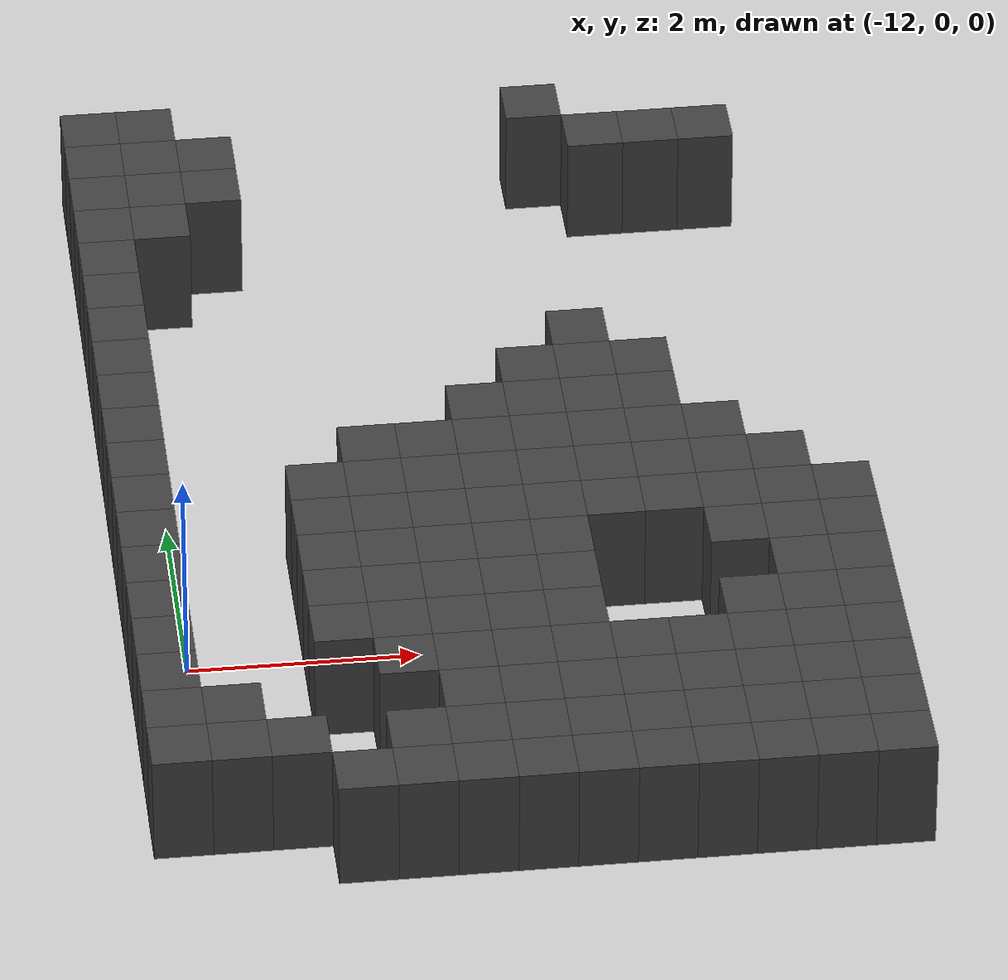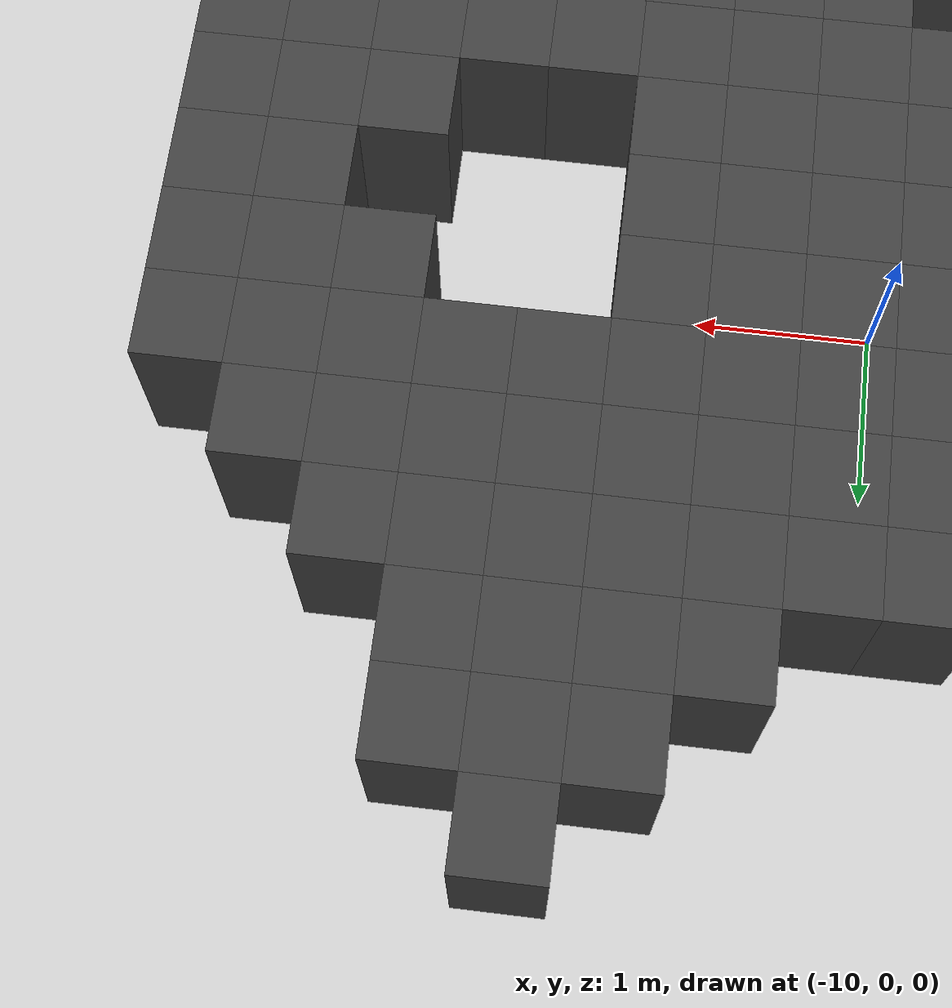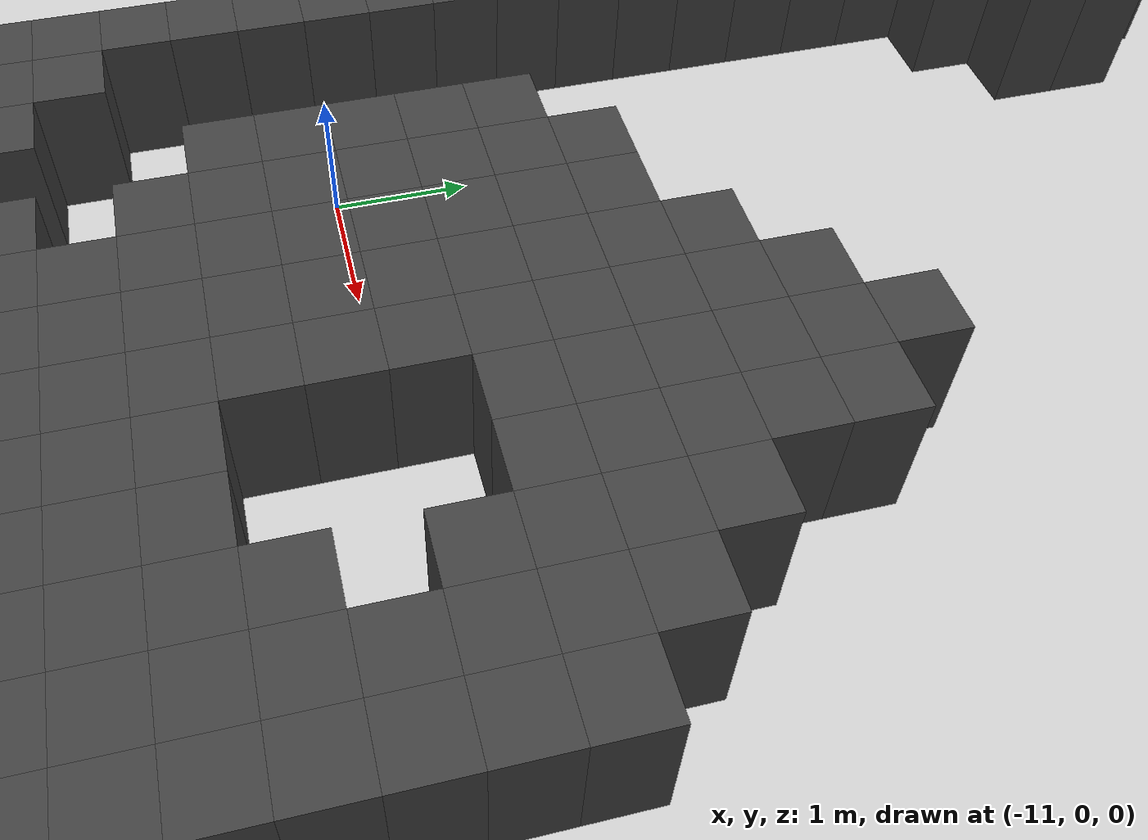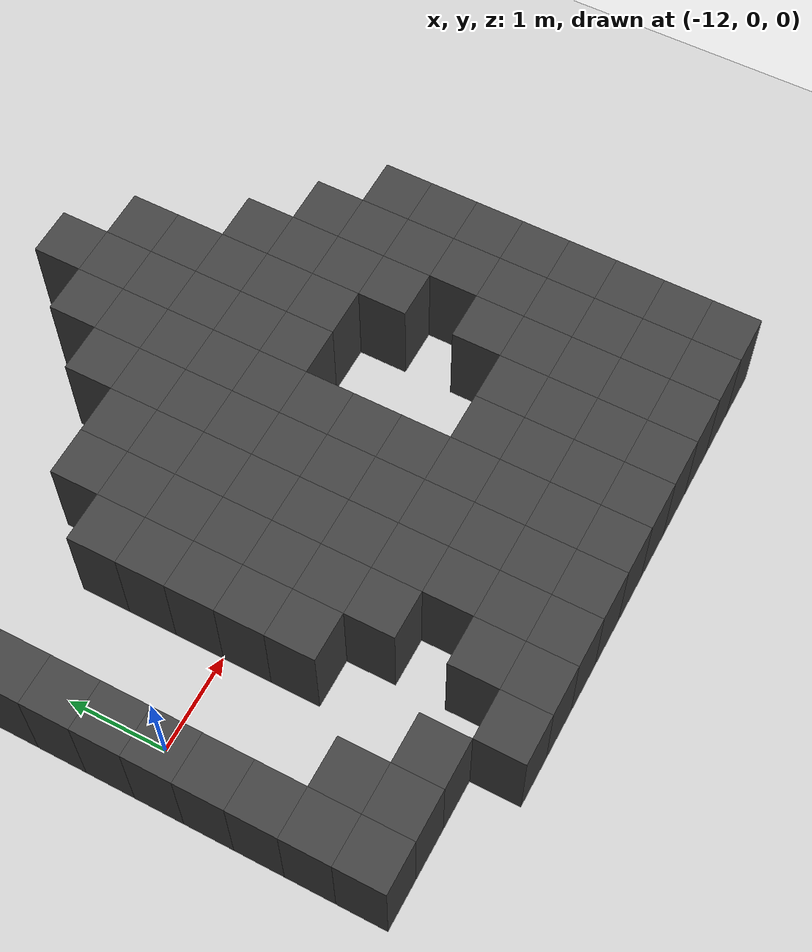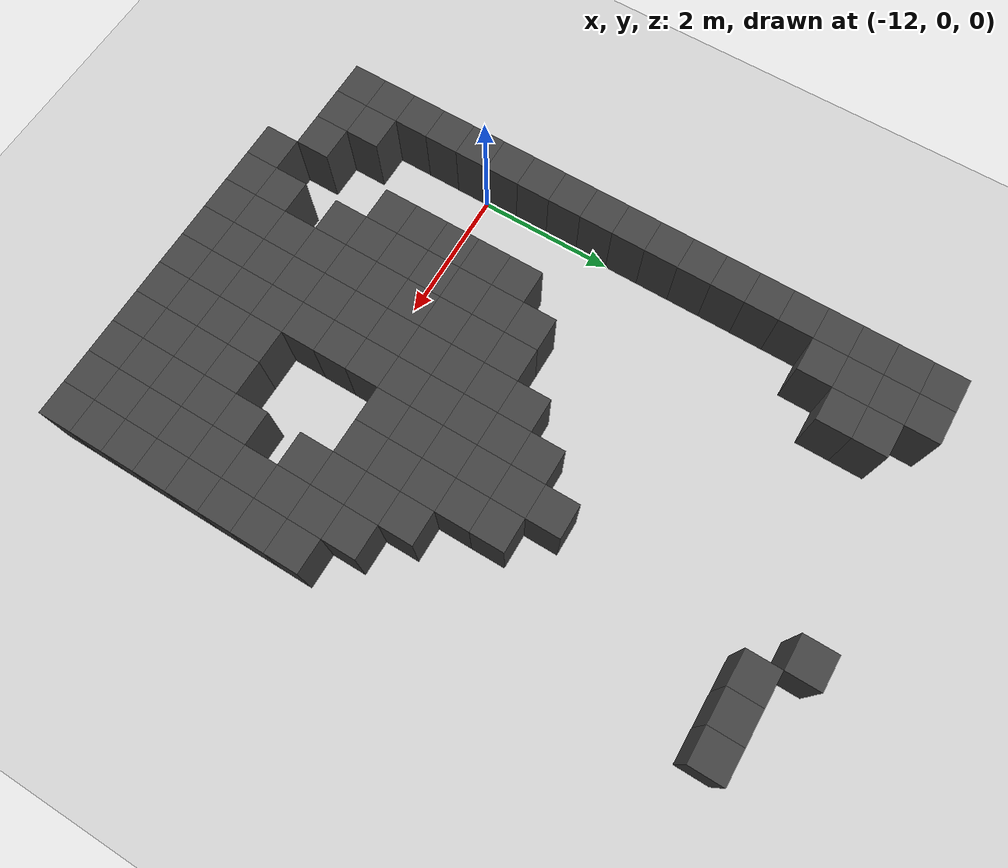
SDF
<sdf version="1.7">
 <world name="map_9082">
  <model name="ground_plane">
   <static>true</static>
   <link name="link">
    <collision name="collision">
     <geometry><plane><normal>0 0 1</normal><size>200 200</size></plane></geometry>
    </collision>
    <visual name="visual">
     <geometry><plane><normal>0 0 1</normal><size>200 200</size></plane></geometry>
     <material><ambient>0.8 0.8 0.8 1</ambient><diffuse>0.8 0.8 0.8 1</diffuse></material>
    </visual>
   </link>
  </model>
  <model name="maze_environment">
   <static>true</static>
   <link name="wall_266">
    <pose>-12.250 6.750 0.500 0 0 0</pose>
    <collision name="col"><geometry><box><size>0.5 0.5 1.0</size></box></geometry></collision>
    <visual name="vis">
     <geometry><box><size>0.5 0.5 1.0</size></box></geometry>
     <material><ambient>0.15 0.15 0.15 1</ambient><diffuse>0.25 0.25 0.25 1</diffuse></material>
    </visual>
   </link>
   <link name="wall_267">
    <pose>-11.750 6.750 0.500 0 0 0</pose>
    <collision name="col"><geometry><box><size>0.5 0.5 1.0</size></box></geometry></collision>
    <visual name="vis">
     <geometry><box><size>0.5 0.5 1.0</size></box></geometry>
     <material><ambient>0.15 0.15 0.15 1</ambient><diffuse>0.25 0.25 0.25 1</diffuse></material>
    </visual>
   </link>
   <link name="wall_268">
    <pose>-8.250 6.750 0.500 0 0 0</pose>
    <collision name="col"><geometry><box><size>0.5 0.5 1.0</size></box></geometry></collision>
    <visual name="vis">
     <geometry><box><size>0.5 0.5 1.0</size></box></geometry>
     <material><ambient>0.15 0.15 0.15 1</ambient><diffuse>0.25 0.25 0.25 1</diffuse></material>
    </visual>
   </link>
   <link name="wall_283">
    <pose>-12.250 6.250 0.500 0 0 0</pose>
    <collision name="col"><geometry><box><size>0.5 0.5 1.0</size></box></geometry></collision>
    <visual name="vis">
     <geometry><box><size>0.5 0.5 1.0</size></box></geometry>
     <material><ambient>0.15 0.15 0.15 1</ambient><diffuse>0.25 0.25 0.25 1</diffuse></material>
    </visual>
   </link>
   <link name="wall_284">
    <pose>-11.750 6.250 0.500 0 0 0</pose>
    <collision name="col"><geometry><box><size>0.5 0.5 1.0</size></box></geometry></collision>
    <visual name="vis">
     <geometry><box><size>0.5 0.5 1.0</size></box></geometry>
     <material><ambient>0.15 0.15 0.15 1</ambient><diffuse>0.25 0.25 0.25 1</diffuse></material>
    </visual>
   </link>
   <link name="wall_285">
    <pose>-11.250 6.250 0.500 0 0 0</pose>
    <collision name="col"><geometry><box><size>0.5 0.5 1.0</size></box></geometry></collision>
    <visual name="vis">
     <geometry><box><size>0.5 0.5 1.0</size></box></geometry>
     <material><ambient>0.15 0.15 0.15 1</ambient><diffuse>0.25 0.25 0.25 1</diffuse></material>
    </visual>
   </link>
   <link name="wall_286">
    <pose>-7.750 6.250 0.500 0 0 0</pose>
    <collision name="col"><geometry><box><size>0.5 0.5 1.0</size></box></geometry></collision>
    <visual name="vis">
     <geometry><box><size>0.5 0.5 1.0</size></box></geometry>
     <material><ambient>0.15 0.15 0.15 1</ambient><diffuse>0.25 0.25 0.25 1</diffuse></material>
    </visual>
   </link>
   <link name="wall_287">
    <pose>-7.250 6.250 0.500 0 0 0</pose>
    <collision name="col"><geometry><box><size>0.5 0.5 1.0</size></box></geometry></collision>
    <visual name="vis">
     <geometry><box><size>0.5 0.5 1.0</size></box></geometry>
     <material><ambient>0.15 0.15 0.15 1</ambient><diffuse>0.25 0.25 0.25 1</diffuse></material>
    </visual>
   </link>
   <link name="wall_288">
    <pose>-6.750 6.250 0.500 0 0 0</pose>
    <collision name="col"><geometry><box><size>0.5 0.5 1.0</size></box></geometry></collision>
    <visual name="vis">
     <geometry><box><size>0.5 0.5 1.0</size></box></geometry>
     <material><ambient>0.15 0.15 0.15 1</ambient><diffuse>0.25 0.25 0.25 1</diffuse></material>
    </visual>
   </link>
   <link name="wall_296">
    <pose>-12.250 5.750 0.500 0 0 0</pose>
    <collision name="col"><geometry><box><size>0.5 0.5 1.0</size></box></geometry></collision>
    <visual name="vis">
     <geometry><box><size>0.5 0.5 1.0</size></box></geometry>
     <material><ambient>0.15 0.15 0.15 1</ambient><diffuse>0.25 0.25 0.25 1</diffuse></material>
    </visual>
   </link>
   <link name="wall_297">
    <pose>-11.750 5.750 0.500 0 0 0</pose>
    <collision name="col"><geometry><box><size>0.5 0.5 1.0</size></box></geometry></collision>
    <visual name="vis">
     <geometry><box><size>0.5 0.5 1.0</size></box></geometry>
     <material><ambient>0.15 0.15 0.15 1</ambient><diffuse>0.25 0.25 0.25 1</diffuse></material>
    </visual>
   </link>
   <link name="wall_298">
    <pose>-11.250 5.750 0.500 0 0 0</pose>
    <collision name="col"><geometry><box><size>0.5 0.5 1.0</size></box></geometry></collision>
    <visual name="vis">
     <geometry><box><size>0.5 0.5 1.0</size></box></geometry>
     <material><ambient>0.15 0.15 0.15 1</ambient><diffuse>0.25 0.25 0.25 1</diffuse></material>
    </visual>
   </link>
   <link name="wall_304">
    <pose>-12.250 5.250 0.500 0 0 0</pose>
    <collision name="col"><geometry><box><size>0.5 0.5 1.0</size></box></geometry></collision>
    <visual name="vis">
     <geometry><box><size>0.5 0.5 1.0</size></box></geometry>
     <material><ambient>0.15 0.15 0.15 1</ambient><diffuse>0.25 0.25 0.25 1</diffuse></material>
    </visual>
   </link>
   <link name="wall_305">
    <pose>-11.750 5.250 0.500 0 0 0</pose>
    <collision name="col"><geometry><box><size>0.5 0.5 1.0</size></box></geometry></collision>
    <visual name="vis">
     <geometry><box><size>0.5 0.5 1.0</size></box></geometry>
     <material><ambient>0.15 0.15 0.15 1</ambient><diffuse>0.25 0.25 0.25 1</diffuse></material>
    </visual>
   </link>
   <link name="wall_307">
    <pose>-12.250 4.750 0.500 0 0 0</pose>
    <collision name="col"><geometry><box><size>0.5 0.5 1.0</size></box></geometry></collision>
    <visual name="vis">
     <geometry><box><size>0.5 0.5 1.0</size></box></geometry>
     <material><ambient>0.15 0.15 0.15 1</ambient><diffuse>0.25 0.25 0.25 1</diffuse></material>
    </visual>
   </link>
   <link name="wall_312">
    <pose>-12.250 4.250 0.500 0 0 0</pose>
    <collision name="col"><geometry><box><size>0.5 0.5 1.0</size></box></geometry></collision>
    <visual name="vis">
     <geometry><box><size>0.5 0.5 1.0</size></box></geometry>
     <material><ambient>0.15 0.15 0.15 1</ambient><diffuse>0.25 0.25 0.25 1</diffuse></material>
    </visual>
   </link>
   <link name="wall_321">
    <pose>-12.250 3.750 0.500 0 0 0</pose>
    <collision name="col"><geometry><box><size>0.5 0.5 1.0</size></box></geometry></collision>
    <visual name="vis">
     <geometry><box><size>0.5 0.5 1.0</size></box></geometry>
     <material><ambient>0.15 0.15 0.15 1</ambient><diffuse>0.25 0.25 0.25 1</diffuse></material>
    </visual>
   </link>
   <link name="wall_331">
    <pose>-12.250 3.250 0.500 0 0 0</pose>
    <collision name="col"><geometry><box><size>0.5 0.5 1.0</size></box></geometry></collision>
    <visual name="vis">
     <geometry><box><size>0.5 0.5 1.0</size></box></geometry>
     <material><ambient>0.15 0.15 0.15 1</ambient><diffuse>0.25 0.25 0.25 1</diffuse></material>
    </visual>
   </link>
   <link name="wall_332">
    <pose>-8.250 3.250 0.500 0 0 0</pose>
    <collision name="col"><geometry><box><size>0.5 0.5 1.0</size></box></geometry></collision>
    <visual name="vis">
     <geometry><box><size>0.5 0.5 1.0</size></box></geometry>
     <material><ambient>0.15 0.15 0.15 1</ambient><diffuse>0.25 0.25 0.25 1</diffuse></material>
    </visual>
   </link>
   <link name="wall_347">
    <pose>-12.250 2.750 0.500 0 0 0</pose>
    <collision name="col"><geometry><box><size>0.5 0.5 1.0</size></box></geometry></collision>
    <visual name="vis">
     <geometry><box><size>0.5 0.5 1.0</size></box></geometry>
     <material><ambient>0.15 0.15 0.15 1</ambient><diffuse>0.25 0.25 0.25 1</diffuse></material>
    </visual>
   </link>
   <link name="wall_348">
    <pose>-8.750 2.750 0.500 0 0 0</pose>
    <collision name="col"><geometry><box><size>0.5 0.5 1.0</size></box></geometry></collision>
    <visual name="vis">
     <geometry><box><size>0.5 0.5 1.0</size></box></geometry>
     <material><ambient>0.15 0.15 0.15 1</ambient><diffuse>0.25 0.25 0.25 1</diffuse></material>
    </visual>
   </link>
   <link name="wall_349">
    <pose>-8.250 2.750 0.500 0 0 0</pose>
    <collision name="col"><geometry><box><size>0.5 0.5 1.0</size></box></geometry></collision>
    <visual name="vis">
     <geometry><box><size>0.5 0.5 1.0</size></box></geometry>
     <material><ambient>0.15 0.15 0.15 1</ambient><diffuse>0.25 0.25 0.25 1</diffuse></material>
    </visual>
   </link>
   <link name="wall_350">
    <pose>-7.750 2.750 0.500 0 0 0</pose>
    <collision name="col"><geometry><box><size>0.5 0.5 1.0</size></box></geometry></collision>
    <visual name="vis">
     <geometry><box><size>0.5 0.5 1.0</size></box></geometry>
     <material><ambient>0.15 0.15 0.15 1</ambient><diffuse>0.25 0.25 0.25 1</diffuse></material>
    </visual>
   </link>
   <link name="wall_363">
    <pose>-12.250 2.250 0.500 0 0 0</pose>
    <collision name="col"><geometry><box><size>0.5 0.5 1.0</size></box></geometry></collision>
    <visual name="vis">
     <geometry><box><size>0.5 0.5 1.0</size></box></geometry>
     <material><ambient>0.15 0.15 0.15 1</ambient><diffuse>0.25 0.25 0.25 1</diffuse></material>
    </visual>
   </link>
   <link name="wall_364">
    <pose>-9.250 2.250 0.500 0 0 0</pose>
    <collision name="col"><geometry><box><size>0.5 0.5 1.0</size></box></geometry></collision>
    <visual name="vis">
     <geometry><box><size>0.5 0.5 1.0</size></box></geometry>
     <material><ambient>0.15 0.15 0.15 1</ambient><diffuse>0.25 0.25 0.25 1</diffuse></material>
    </visual>
   </link>
   <link name="wall_365">
    <pose>-8.750 2.250 0.500 0 0 0</pose>
    <collision name="col"><geometry><box><size>0.5 0.5 1.0</size></box></geometry></collision>
    <visual name="vis">
     <geometry><box><size>0.5 0.5 1.0</size></box></geometry>
     <material><ambient>0.15 0.15 0.15 1</ambient><diffuse>0.25 0.25 0.25 1</diffuse></material>
    </visual>
   </link>
   <link name="wall_366">
    <pose>-8.250 2.250 0.500 0 0 0</pose>
    <collision name="col"><geometry><box><size>0.5 0.5 1.0</size></box></geometry></collision>
    <visual name="vis">
     <geometry><box><size>0.5 0.5 1.0</size></box></geometry>
     <material><ambient>0.15 0.15 0.15 1</ambient><diffuse>0.25 0.25 0.25 1</diffuse></material>
    </visual>
   </link>
   <link name="wall_367">
    <pose>-7.750 2.250 0.500 0 0 0</pose>
    <collision name="col"><geometry><box><size>0.5 0.5 1.0</size></box></geometry></collision>
    <visual name="vis">
     <geometry><box><size>0.5 0.5 1.0</size></box></geometry>
     <material><ambient>0.15 0.15 0.15 1</ambient><diffuse>0.25 0.25 0.25 1</diffuse></material>
    </visual>
   </link>
   <link name="wall_379">
    <pose>-12.250 1.750 0.500 0 0 0</pose>
    <collision name="col"><geometry><box><size>0.5 0.5 1.0</size></box></geometry></collision>
    <visual name="vis">
     <geometry><box><size>0.5 0.5 1.0</size></box></geometry>
     <material><ambient>0.15 0.15 0.15 1</ambient><diffuse>0.25 0.25 0.25 1</diffuse></material>
    </visual>
   </link>
   <link name="wall_380">
    <pose>-10.250 1.750 0.500 0 0 0</pose>
    <collision name="col"><geometry><box><size>0.5 0.5 1.0</size></box></geometry></collision>
    <visual name="vis">
     <geometry><box><size>0.5 0.5 1.0</size></box></geometry>
     <material><ambient>0.15 0.15 0.15 1</ambient><diffuse>0.25 0.25 0.25 1</diffuse></material>
    </visual>
   </link>
   <link name="wall_381">
    <pose>-9.750 1.750 0.500 0 0 0</pose>
    <collision name="col"><geometry><box><size>0.5 0.5 1.0</size></box></geometry></collision>
    <visual name="vis">
     <geometry><box><size>0.5 0.5 1.0</size></box></geometry>
     <material><ambient>0.15 0.15 0.15 1</ambient><diffuse>0.25 0.25 0.25 1</diffuse></material>
    </visual>
   </link>
   <link name="wall_382">
    <pose>-9.250 1.750 0.500 0 0 0</pose>
    <collision name="col"><geometry><box><size>0.5 0.5 1.0</size></box></geometry></collision>
    <visual name="vis">
     <geometry><box><size>0.5 0.5 1.0</size></box></geometry>
     <material><ambient>0.15 0.15 0.15 1</ambient><diffuse>0.25 0.25 0.25 1</diffuse></material>
    </visual>
   </link>
   <link name="wall_383">
    <pose>-8.750 1.750 0.500 0 0 0</pose>
    <collision name="col"><geometry><box><size>0.5 0.5 1.0</size></box></geometry></collision>
    <visual name="vis">
     <geometry><box><size>0.5 0.5 1.0</size></box></geometry>
     <material><ambient>0.15 0.15 0.15 1</ambient><diffuse>0.25 0.25 0.25 1</diffuse></material>
    </visual>
   </link>
   <link name="wall_384">
    <pose>-8.250 1.750 0.500 0 0 0</pose>
    <collision name="col"><geometry><box><size>0.5 0.5 1.0</size></box></geometry></collision>
    <visual name="vis">
     <geometry><box><size>0.5 0.5 1.0</size></box></geometry>
     <material><ambient>0.15 0.15 0.15 1</ambient><diffuse>0.25 0.25 0.25 1</diffuse></material>
    </visual>
   </link>
   <link name="wall_385">
    <pose>-7.750 1.750 0.500 0 0 0</pose>
    <collision name="col"><geometry><box><size>0.5 0.5 1.0</size></box></geometry></collision>
    <visual name="vis">
     <geometry><box><size>0.5 0.5 1.0</size></box></geometry>
     <material><ambient>0.15 0.15 0.15 1</ambient><diffuse>0.25 0.25 0.25 1</diffuse></material>
    </visual>
   </link>
   <link name="wall_386">
    <pose>-7.250 1.750 0.500 0 0 0</pose>
    <collision name="col"><geometry><box><size>0.5 0.5 1.0</size></box></geometry></collision>
    <visual name="vis">
     <geometry><box><size>0.5 0.5 1.0</size></box></geometry>
     <material><ambient>0.15 0.15 0.15 1</ambient><diffuse>0.25 0.25 0.25 1</diffuse></material>
    </visual>
   </link>
   <link name="wall_396">
    <pose>-12.250 1.250 0.500 0 0 0</pose>
    <collision name="col"><geometry><box><size>0.5 0.5 1.0</size></box></geometry></collision>
    <visual name="vis">
     <geometry><box><size>0.5 0.5 1.0</size></box></geometry>
     <material><ambient>0.15 0.15 0.15 1</ambient><diffuse>0.25 0.25 0.25 1</diffuse></material>
    </visual>
   </link>
   <link name="wall_397">
    <pose>-10.750 1.250 0.500 0 0 0</pose>
    <collision name="col"><geometry><box><size>0.5 0.5 1.0</size></box></geometry></collision>
    <visual name="vis">
     <geometry><box><size>0.5 0.5 1.0</size></box></geometry>
     <material><ambient>0.15 0.15 0.15 1</ambient><diffuse>0.25 0.25 0.25 1</diffuse></material>
    </visual>
   </link>
   <link name="wall_398">
    <pose>-10.250 1.250 0.500 0 0 0</pose>
    <collision name="col"><geometry><box><size>0.5 0.5 1.0</size></box></geometry></collision>
    <visual name="vis">
     <geometry><box><size>0.5 0.5 1.0</size></box></geometry>
     <material><ambient>0.15 0.15 0.15 1</ambient><diffuse>0.25 0.25 0.25 1</diffuse></material>
    </visual>
   </link>
   <link name="wall_399">
    <pose>-9.750 1.250 0.500 0 0 0</pose>
    <collision name="col"><geometry><box><size>0.5 0.5 1.0</size></box></geometry></collision>
    <visual name="vis">
     <geometry><box><size>0.5 0.5 1.0</size></box></geometry>
     <material><ambient>0.15 0.15 0.15 1</ambient><diffuse>0.25 0.25 0.25 1</diffuse></material>
    </visual>
   </link>
   <link name="wall_400">
    <pose>-9.250 1.250 0.500 0 0 0</pose>
    <collision name="col"><geometry><box><size>0.5 0.5 1.0</size></box></geometry></collision>
    <visual name="vis">
     <geometry><box><size>0.5 0.5 1.0</size></box></geometry>
     <material><ambient>0.15 0.15 0.15 1</ambient><diffuse>0.25 0.25 0.25 1</diffuse></material>
    </visual>
   </link>
   <link name="wall_401">
    <pose>-8.750 1.250 0.500 0 0 0</pose>
    <collision name="col"><geometry><box><size>0.5 0.5 1.0</size></box></geometry></collision>
    <visual name="vis">
     <geometry><box><size>0.5 0.5 1.0</size></box></geometry>
     <material><ambient>0.15 0.15 0.15 1</ambient><diffuse>0.25 0.25 0.25 1</diffuse></material>
    </visual>
   </link>
   <link name="wall_402">
    <pose>-8.250 1.250 0.500 0 0 0</pose>
    <collision name="col"><geometry><box><size>0.5 0.5 1.0</size></box></geometry></collision>
    <visual name="vis">
     <geometry><box><size>0.5 0.5 1.0</size></box></geometry>
     <material><ambient>0.15 0.15 0.15 1</ambient><diffuse>0.25 0.25 0.25 1</diffuse></material>
    </visual>
   </link>
   <link name="wall_403">
    <pose>-7.750 1.250 0.500 0 0 0</pose>
    <collision name="col"><geometry><box><size>0.5 0.5 1.0</size></box></geometry></collision>
    <visual name="vis">
     <geometry><box><size>0.5 0.5 1.0</size></box></geometry>
     <material><ambient>0.15 0.15 0.15 1</ambient><diffuse>0.25 0.25 0.25 1</diffuse></material>
    </visual>
   </link>
   <link name="wall_404">
    <pose>-7.250 1.250 0.500 0 0 0</pose>
    <collision name="col"><geometry><box><size>0.5 0.5 1.0</size></box></geometry></collision>
    <visual name="vis">
     <geometry><box><size>0.5 0.5 1.0</size></box></geometry>
     <material><ambient>0.15 0.15 0.15 1</ambient><diffuse>0.25 0.25 0.25 1</diffuse></material>
    </visual>
   </link>
   <link name="wall_405">
    <pose>-6.750 1.250 0.500 0 0 0</pose>
    <collision name="col"><geometry><box><size>0.5 0.5 1.0</size></box></geometry></collision>
    <visual name="vis">
     <geometry><box><size>0.5 0.5 1.0</size></box></geometry>
     <material><ambient>0.15 0.15 0.15 1</ambient><diffuse>0.25 0.25 0.25 1</diffuse></material>
    </visual>
   </link>
   <link name="wall_411">
    <pose>-12.250 0.750 0.500 0 0 0</pose>
    <collision name="col"><geometry><box><size>0.5 0.5 1.0</size></box></geometry></collision>
    <visual name="vis">
     <geometry><box><size>0.5 0.5 1.0</size></box></geometry>
     <material><ambient>0.15 0.15 0.15 1</ambient><diffuse>0.25 0.25 0.25 1</diffuse></material>
    </visual>
   </link>
   <link name="wall_412">
    <pose>-10.750 0.750 0.500 0 0 0</pose>
    <collision name="col"><geometry><box><size>0.5 0.5 1.0</size></box></geometry></collision>
    <visual name="vis">
     <geometry><box><size>0.5 0.5 1.0</size></box></geometry>
     <material><ambient>0.15 0.15 0.15 1</ambient><diffuse>0.25 0.25 0.25 1</diffuse></material>
    </visual>
   </link>
   <link name="wall_413">
    <pose>-10.250 0.750 0.500 0 0 0</pose>
    <collision name="col"><geometry><box><size>0.5 0.5 1.0</size></box></geometry></collision>
    <visual name="vis">
     <geometry><box><size>0.5 0.5 1.0</size></box></geometry>
     <material><ambient>0.15 0.15 0.15 1</ambient><diffuse>0.25 0.25 0.25 1</diffuse></material>
    </visual>
   </link>
   <link name="wall_414">
    <pose>-9.750 0.750 0.500 0 0 0</pose>
    <collision name="col"><geometry><box><size>0.5 0.5 1.0</size></box></geometry></collision>
    <visual name="vis">
     <geometry><box><size>0.5 0.5 1.0</size></box></geometry>
     <material><ambient>0.15 0.15 0.15 1</ambient><diffuse>0.25 0.25 0.25 1</diffuse></material>
    </visual>
   </link>
   <link name="wall_415">
    <pose>-9.250 0.750 0.500 0 0 0</pose>
    <collision name="col"><geometry><box><size>0.5 0.5 1.0</size></box></geometry></collision>
    <visual name="vis">
     <geometry><box><size>0.5 0.5 1.0</size></box></geometry>
     <material><ambient>0.15 0.15 0.15 1</ambient><diffuse>0.25 0.25 0.25 1</diffuse></material>
    </visual>
   </link>
   <link name="wall_416">
    <pose>-8.750 0.750 0.500 0 0 0</pose>
    <collision name="col"><geometry><box><size>0.5 0.5 1.0</size></box></geometry></collision>
    <visual name="vis">
     <geometry><box><size>0.5 0.5 1.0</size></box></geometry>
     <material><ambient>0.15 0.15 0.15 1</ambient><diffuse>0.25 0.25 0.25 1</diffuse></material>
    </visual>
   </link>
   <link name="wall_417">
    <pose>-8.250 0.750 0.500 0 0 0</pose>
    <collision name="col"><geometry><box><size>0.5 0.5 1.0</size></box></geometry></collision>
    <visual name="vis">
     <geometry><box><size>0.5 0.5 1.0</size></box></geometry>
     <material><ambient>0.15 0.15 0.15 1</ambient><diffuse>0.25 0.25 0.25 1</diffuse></material>
    </visual>
   </link>
   <link name="wall_418">
    <pose>-7.750 0.750 0.500 0 0 0</pose>
    <collision name="col"><geometry><box><size>0.5 0.5 1.0</size></box></geometry></collision>
    <visual name="vis">
     <geometry><box><size>0.5 0.5 1.0</size></box></geometry>
     <material><ambient>0.15 0.15 0.15 1</ambient><diffuse>0.25 0.25 0.25 1</diffuse></material>
    </visual>
   </link>
   <link name="wall_419">
    <pose>-7.250 0.750 0.500 0 0 0</pose>
    <collision name="col"><geometry><box><size>0.5 0.5 1.0</size></box></geometry></collision>
    <visual name="vis">
     <geometry><box><size>0.5 0.5 1.0</size></box></geometry>
     <material><ambient>0.15 0.15 0.15 1</ambient><diffuse>0.25 0.25 0.25 1</diffuse></material>
    </visual>
   </link>
   <link name="wall_420">
    <pose>-6.750 0.750 0.500 0 0 0</pose>
    <collision name="col"><geometry><box><size>0.5 0.5 1.0</size></box></geometry></collision>
    <visual name="vis">
     <geometry><box><size>0.5 0.5 1.0</size></box></geometry>
     <material><ambient>0.15 0.15 0.15 1</ambient><diffuse>0.25 0.25 0.25 1</diffuse></material>
    </visual>
   </link>
   <link name="wall_421">
    <pose>-6.250 0.750 0.500 0 0 0</pose>
    <collision name="col"><geometry><box><size>0.5 0.5 1.0</size></box></geometry></collision>
    <visual name="vis">
     <geometry><box><size>0.5 0.5 1.0</size></box></geometry>
     <material><ambient>0.15 0.15 0.15 1</ambient><diffuse>0.25 0.25 0.25 1</diffuse></material>
    </visual>
   </link>
   <link name="wall_427">
    <pose>-12.250 0.250 0.500 0 0 0</pose>
    <collision name="col"><geometry><box><size>0.5 0.5 1.0</size></box></geometry></collision>
    <visual name="vis">
     <geometry><box><size>0.5 0.5 1.0</size></box></geometry>
     <material><ambient>0.15 0.15 0.15 1</ambient><diffuse>0.25 0.25 0.25 1</diffuse></material>
    </visual>
   </link>
   <link name="wall_428">
    <pose>-10.750 0.250 0.500 0 0 0</pose>
    <collision name="col"><geometry><box><size>0.5 0.5 1.0</size></box></geometry></collision>
    <visual name="vis">
     <geometry><box><size>0.5 0.5 1.0</size></box></geometry>
     <material><ambient>0.15 0.15 0.15 1</ambient><diffuse>0.25 0.25 0.25 1</diffuse></material>
    </visual>
   </link>
   <link name="wall_429">
    <pose>-10.250 0.250 0.500 0 0 0</pose>
    <collision name="col"><geometry><box><size>0.5 0.5 1.0</size></box></geometry></collision>
    <visual name="vis">
     <geometry><box><size>0.5 0.5 1.0</size></box></geometry>
     <material><ambient>0.15 0.15 0.15 1</ambient><diffuse>0.25 0.25 0.25 1</diffuse></material>
    </visual>
   </link>
   <link name="wall_430">
    <pose>-9.750 0.250 0.500 0 0 0</pose>
    <collision name="col"><geometry><box><size>0.5 0.5 1.0</size></box></geometry></collision>
    <visual name="vis">
     <geometry><box><size>0.5 0.5 1.0</size></box></geometry>
     <material><ambient>0.15 0.15 0.15 1</ambient><diffuse>0.25 0.25 0.25 1</diffuse></material>
    </visual>
   </link>
   <link name="wall_431">
    <pose>-9.250 0.250 0.500 0 0 0</pose>
    <collision name="col"><geometry><box><size>0.5 0.5 1.0</size></box></geometry></collision>
    <visual name="vis">
     <geometry><box><size>0.5 0.5 1.0</size></box></geometry>
     <material><ambient>0.15 0.15 0.15 1</ambient><diffuse>0.25 0.25 0.25 1</diffuse></material>
    </visual>
   </link>
   <link name="wall_432">
    <pose>-8.750 0.250 0.500 0 0 0</pose>
    <collision name="col"><geometry><box><size>0.5 0.5 1.0</size></box></geometry></collision>
    <visual name="vis">
     <geometry><box><size>0.5 0.5 1.0</size></box></geometry>
     <material><ambient>0.15 0.15 0.15 1</ambient><diffuse>0.25 0.25 0.25 1</diffuse></material>
    </visual>
   </link>
   <link name="wall_433">
    <pose>-7.250 0.250 0.500 0 0 0</pose>
    <collision name="col"><geometry><box><size>0.5 0.5 1.0</size></box></geometry></collision>
    <visual name="vis">
     <geometry><box><size>0.5 0.5 1.0</size></box></geometry>
     <material><ambient>0.15 0.15 0.15 1</ambient><diffuse>0.25 0.25 0.25 1</diffuse></material>
    </visual>
   </link>
   <link name="wall_434">
    <pose>-6.750 0.250 0.500 0 0 0</pose>
    <collision name="col"><geometry><box><size>0.5 0.5 1.0</size></box></geometry></collision>
    <visual name="vis">
     <geometry><box><size>0.5 0.5 1.0</size></box></geometry>
     <material><ambient>0.15 0.15 0.15 1</ambient><diffuse>0.25 0.25 0.25 1</diffuse></material>
    </visual>
   </link>
   <link name="wall_435">
    <pose>-6.250 0.250 0.500 0 0 0</pose>
    <collision name="col"><geometry><box><size>0.5 0.5 1.0</size></box></geometry></collision>
    <visual name="vis">
     <geometry><box><size>0.5 0.5 1.0</size></box></geometry>
     <material><ambient>0.15 0.15 0.15 1</ambient><diffuse>0.25 0.25 0.25 1</diffuse></material>
    </visual>
   </link>
   <link name="wall_442">
    <pose>-12.250 -0.250 0.500 0 0 0</pose>
    <collision name="col"><geometry><box><size>0.5 0.5 1.0</size></box></geometry></collision>
    <visual name="vis">
     <geometry><box><size>0.5 0.5 1.0</size></box></geometry>
     <material><ambient>0.15 0.15 0.15 1</ambient><diffuse>0.25 0.25 0.25 1</diffuse></material>
    </visual>
   </link>
   <link name="wall_443">
    <pose>-10.750 -0.250 0.500 0 0 0</pose>
    <collision name="col"><geometry><box><size>0.5 0.5 1.0</size></box></geometry></collision>
    <visual name="vis">
     <geometry><box><size>0.5 0.5 1.0</size></box></geometry>
     <material><ambient>0.15 0.15 0.15 1</ambient><diffuse>0.25 0.25 0.25 1</diffuse></material>
    </visual>
   </link>
   <link name="wall_444">
    <pose>-10.250 -0.250 0.500 0 0 0</pose>
    <collision name="col"><geometry><box><size>0.5 0.5 1.0</size></box></geometry></collision>
    <visual name="vis">
     <geometry><box><size>0.5 0.5 1.0</size></box></geometry>
     <material><ambient>0.15 0.15 0.15 1</ambient><diffuse>0.25 0.25 0.25 1</diffuse></material>
    </visual>
   </link>
   <link name="wall_445">
    <pose>-9.750 -0.250 0.500 0 0 0</pose>
    <collision name="col"><geometry><box><size>0.5 0.5 1.0</size></box></geometry></collision>
    <visual name="vis">
     <geometry><box><size>0.5 0.5 1.0</size></box></geometry>
     <material><ambient>0.15 0.15 0.15 1</ambient><diffuse>0.25 0.25 0.25 1</diffuse></material>
    </visual>
   </link>
   <link name="wall_446">
    <pose>-9.250 -0.250 0.500 0 0 0</pose>
    <collision name="col"><geometry><box><size>0.5 0.5 1.0</size></box></geometry></collision>
    <visual name="vis">
     <geometry><box><size>0.5 0.5 1.0</size></box></geometry>
     <material><ambient>0.15 0.15 0.15 1</ambient><diffuse>0.25 0.25 0.25 1</diffuse></material>
    </visual>
   </link>
   <link name="wall_447">
    <pose>-8.750 -0.250 0.500 0 0 0</pose>
    <collision name="col"><geometry><box><size>0.5 0.5 1.0</size></box></geometry></collision>
    <visual name="vis">
     <geometry><box><size>0.5 0.5 1.0</size></box></geometry>
     <material><ambient>0.15 0.15 0.15 1</ambient><diffuse>0.25 0.25 0.25 1</diffuse></material>
    </visual>
   </link>
   <link name="wall_448">
    <pose>-6.750 -0.250 0.500 0 0 0</pose>
    <collision name="col"><geometry><box><size>0.5 0.5 1.0</size></box></geometry></collision>
    <visual name="vis">
     <geometry><box><size>0.5 0.5 1.0</size></box></geometry>
     <material><ambient>0.15 0.15 0.15 1</ambient><diffuse>0.25 0.25 0.25 1</diffuse></material>
    </visual>
   </link>
   <link name="wall_449">
    <pose>-6.250 -0.250 0.500 0 0 0</pose>
    <collision name="col"><geometry><box><size>0.5 0.5 1.0</size></box></geometry></collision>
    <visual name="vis">
     <geometry><box><size>0.5 0.5 1.0</size></box></geometry>
     <material><ambient>0.15 0.15 0.15 1</ambient><diffuse>0.25 0.25 0.25 1</diffuse></material>
    </visual>
   </link>
   <link name="wall_456">
    <pose>-12.250 -0.750 0.500 0 0 0</pose>
    <collision name="col"><geometry><box><size>0.5 0.5 1.0</size></box></geometry></collision>
    <visual name="vis">
     <geometry><box><size>0.5 0.5 1.0</size></box></geometry>
     <material><ambient>0.15 0.15 0.15 1</ambient><diffuse>0.25 0.25 0.25 1</diffuse></material>
    </visual>
   </link>
   <link name="wall_457">
    <pose>-10.750 -0.750 0.500 0 0 0</pose>
    <collision name="col"><geometry><box><size>0.5 0.5 1.0</size></box></geometry></collision>
    <visual name="vis">
     <geometry><box><size>0.5 0.5 1.0</size></box></geometry>
     <material><ambient>0.15 0.15 0.15 1</ambient><diffuse>0.25 0.25 0.25 1</diffuse></material>
    </visual>
   </link>
   <link name="wall_458">
    <pose>-10.250 -0.750 0.500 0 0 0</pose>
    <collision name="col"><geometry><box><size>0.5 0.5 1.0</size></box></geometry></collision>
    <visual name="vis">
     <geometry><box><size>0.5 0.5 1.0</size></box></geometry>
     <material><ambient>0.15 0.15 0.15 1</ambient><diffuse>0.25 0.25 0.25 1</diffuse></material>
    </visual>
   </link>
   <link name="wall_459">
    <pose>-9.750 -0.750 0.500 0 0 0</pose>
    <collision name="col"><geometry><box><size>0.5 0.5 1.0</size></box></geometry></collision>
    <visual name="vis">
     <geometry><box><size>0.5 0.5 1.0</size></box></geometry>
     <material><ambient>0.15 0.15 0.15 1</ambient><diffuse>0.25 0.25 0.25 1</diffuse></material>
    </visual>
   </link>
   <link name="wall_460">
    <pose>-9.250 -0.750 0.500 0 0 0</pose>
    <collision name="col"><geometry><box><size>0.5 0.5 1.0</size></box></geometry></collision>
    <visual name="vis">
     <geometry><box><size>0.5 0.5 1.0</size></box></geometry>
     <material><ambient>0.15 0.15 0.15 1</ambient><diffuse>0.25 0.25 0.25 1</diffuse></material>
    </visual>
   </link>
   <link name="wall_461">
    <pose>-8.750 -0.750 0.500 0 0 0</pose>
    <collision name="col"><geometry><box><size>0.5 0.5 1.0</size></box></geometry></collision>
    <visual name="vis">
     <geometry><box><size>0.5 0.5 1.0</size></box></geometry>
     <material><ambient>0.15 0.15 0.15 1</ambient><diffuse>0.25 0.25 0.25 1</diffuse></material>
    </visual>
   </link>
   <link name="wall_462">
    <pose>-7.250 -0.750 0.500 0 0 0</pose>
    <collision name="col"><geometry><box><size>0.5 0.5 1.0</size></box></geometry></collision>
    <visual name="vis">
     <geometry><box><size>0.5 0.5 1.0</size></box></geometry>
     <material><ambient>0.15 0.15 0.15 1</ambient><diffuse>0.25 0.25 0.25 1</diffuse></material>
    </visual>
   </link>
   <link name="wall_463">
    <pose>-6.750 -0.750 0.500 0 0 0</pose>
    <collision name="col"><geometry><box><size>0.5 0.5 1.0</size></box></geometry></collision>
    <visual name="vis">
     <geometry><box><size>0.5 0.5 1.0</size></box></geometry>
     <material><ambient>0.15 0.15 0.15 1</ambient><diffuse>0.25 0.25 0.25 1</diffuse></material>
    </visual>
   </link>
   <link name="wall_464">
    <pose>-6.250 -0.750 0.500 0 0 0</pose>
    <collision name="col"><geometry><box><size>0.5 0.5 1.0</size></box></geometry></collision>
    <visual name="vis">
     <geometry><box><size>0.5 0.5 1.0</size></box></geometry>
     <material><ambient>0.15 0.15 0.15 1</ambient><diffuse>0.25 0.25 0.25 1</diffuse></material>
    </visual>
   </link>
   <link name="wall_472">
    <pose>-12.250 -1.250 0.500 0 0 0</pose>
    <collision name="col"><geometry><box><size>0.5 0.5 1.0</size></box></geometry></collision>
    <visual name="vis">
     <geometry><box><size>0.5 0.5 1.0</size></box></geometry>
     <material><ambient>0.15 0.15 0.15 1</ambient><diffuse>0.25 0.25 0.25 1</diffuse></material>
    </visual>
   </link>
   <link name="wall_473">
    <pose>-10.250 -1.250 0.500 0 0 0</pose>
    <collision name="col"><geometry><box><size>0.5 0.5 1.0</size></box></geometry></collision>
    <visual name="vis">
     <geometry><box><size>0.5 0.5 1.0</size></box></geometry>
     <material><ambient>0.15 0.15 0.15 1</ambient><diffuse>0.25 0.25 0.25 1</diffuse></material>
    </visual>
   </link>
   <link name="wall_474">
    <pose>-9.750 -1.250 0.500 0 0 0</pose>
    <collision name="col"><geometry><box><size>0.5 0.5 1.0</size></box></geometry></collision>
    <visual name="vis">
     <geometry><box><size>0.5 0.5 1.0</size></box></geometry>
     <material><ambient>0.15 0.15 0.15 1</ambient><diffuse>0.25 0.25 0.25 1</diffuse></material>
    </visual>
   </link>
   <link name="wall_475">
    <pose>-9.250 -1.250 0.500 0 0 0</pose>
    <collision name="col"><geometry><box><size>0.5 0.5 1.0</size></box></geometry></collision>
    <visual name="vis">
     <geometry><box><size>0.5 0.5 1.0</size></box></geometry>
     <material><ambient>0.15 0.15 0.15 1</ambient><diffuse>0.25 0.25 0.25 1</diffuse></material>
    </visual>
   </link>
   <link name="wall_476">
    <pose>-8.750 -1.250 0.500 0 0 0</pose>
    <collision name="col"><geometry><box><size>0.5 0.5 1.0</size></box></geometry></collision>
    <visual name="vis">
     <geometry><box><size>0.5 0.5 1.0</size></box></geometry>
     <material><ambient>0.15 0.15 0.15 1</ambient><diffuse>0.25 0.25 0.25 1</diffuse></material>
    </visual>
   </link>
   <link name="wall_477">
    <pose>-8.250 -1.250 0.500 0 0 0</pose>
    <collision name="col"><geometry><box><size>0.5 0.5 1.0</size></box></geometry></collision>
    <visual name="vis">
     <geometry><box><size>0.5 0.5 1.0</size></box></geometry>
     <material><ambient>0.15 0.15 0.15 1</ambient><diffuse>0.25 0.25 0.25 1</diffuse></material>
    </visual>
   </link>
   <link name="wall_478">
    <pose>-7.750 -1.250 0.500 0 0 0</pose>
    <collision name="col"><geometry><box><size>0.5 0.5 1.0</size></box></geometry></collision>
    <visual name="vis">
     <geometry><box><size>0.5 0.5 1.0</size></box></geometry>
     <material><ambient>0.15 0.15 0.15 1</ambient><diffuse>0.25 0.25 0.25 1</diffuse></material>
    </visual>
   </link>
   <link name="wall_479">
    <pose>-7.250 -1.250 0.500 0 0 0</pose>
    <collision name="col"><geometry><box><size>0.5 0.5 1.0</size></box></geometry></collision>
    <visual name="vis">
     <geometry><box><size>0.5 0.5 1.0</size></box></geometry>
     <material><ambient>0.15 0.15 0.15 1</ambient><diffuse>0.25 0.25 0.25 1</diffuse></material>
    </visual>
   </link>
   <link name="wall_480">
    <pose>-6.750 -1.250 0.500 0 0 0</pose>
    <collision name="col"><geometry><box><size>0.5 0.5 1.0</size></box></geometry></collision>
    <visual name="vis">
     <geometry><box><size>0.5 0.5 1.0</size></box></geometry>
     <material><ambient>0.15 0.15 0.15 1</ambient><diffuse>0.25 0.25 0.25 1</diffuse></material>
    </visual>
   </link>
   <link name="wall_481">
    <pose>-6.250 -1.250 0.500 0 0 0</pose>
    <collision name="col"><geometry><box><size>0.5 0.5 1.0</size></box></geometry></collision>
    <visual name="vis">
     <geometry><box><size>0.5 0.5 1.0</size></box></geometry>
     <material><ambient>0.15 0.15 0.15 1</ambient><diffuse>0.25 0.25 0.25 1</diffuse></material>
    </visual>
   </link>
   <link name="wall_490">
    <pose>-12.250 -1.750 0.500 0 0 0</pose>
    <collision name="col"><geometry><box><size>0.5 0.5 1.0</size></box></geometry></collision>
    <visual name="vis">
     <geometry><box><size>0.5 0.5 1.0</size></box></geometry>
     <material><ambient>0.15 0.15 0.15 1</ambient><diffuse>0.25 0.25 0.25 1</diffuse></material>
    </visual>
   </link>
   <link name="wall_491">
    <pose>-11.750 -1.750 0.500 0 0 0</pose>
    <collision name="col"><geometry><box><size>0.5 0.5 1.0</size></box></geometry></collision>
    <visual name="vis">
     <geometry><box><size>0.5 0.5 1.0</size></box></geometry>
     <material><ambient>0.15 0.15 0.15 1</ambient><diffuse>0.25 0.25 0.25 1</diffuse></material>
    </visual>
   </link>
   <link name="wall_492">
    <pose>-9.750 -1.750 0.500 0 0 0</pose>
    <collision name="col"><geometry><box><size>0.5 0.5 1.0</size></box></geometry></collision>
    <visual name="vis">
     <geometry><box><size>0.5 0.5 1.0</size></box></geometry>
     <material><ambient>0.15 0.15 0.15 1</ambient><diffuse>0.25 0.25 0.25 1</diffuse></material>
    </visual>
   </link>
   <link name="wall_493">
    <pose>-9.250 -1.750 0.500 0 0 0</pose>
    <collision name="col"><geometry><box><size>0.5 0.5 1.0</size></box></geometry></collision>
    <visual name="vis">
     <geometry><box><size>0.5 0.5 1.0</size></box></geometry>
     <material><ambient>0.15 0.15 0.15 1</ambient><diffuse>0.25 0.25 0.25 1</diffuse></material>
    </visual>
   </link>
   <link name="wall_494">
    <pose>-8.750 -1.750 0.500 0 0 0</pose>
    <collision name="col"><geometry><box><size>0.5 0.5 1.0</size></box></geometry></collision>
    <visual name="vis">
     <geometry><box><size>0.5 0.5 1.0</size></box></geometry>
     <material><ambient>0.15 0.15 0.15 1</ambient><diffuse>0.25 0.25 0.25 1</diffuse></material>
    </visual>
   </link>
   <link name="wall_495">
    <pose>-8.250 -1.750 0.500 0 0 0</pose>
    <collision name="col"><geometry><box><size>0.5 0.5 1.0</size></box></geometry></collision>
    <visual name="vis">
     <geometry><box><size>0.5 0.5 1.0</size></box></geometry>
     <material><ambient>0.15 0.15 0.15 1</ambient><diffuse>0.25 0.25 0.25 1</diffuse></material>
    </visual>
   </link>
   <link name="wall_496">
    <pose>-7.750 -1.750 0.500 0 0 0</pose>
    <collision name="col"><geometry><box><size>0.5 0.5 1.0</size></box></geometry></collision>
    <visual name="vis">
     <geometry><box><size>0.5 0.5 1.0</size></box></geometry>
     <material><ambient>0.15 0.15 0.15 1</ambient><diffuse>0.25 0.25 0.25 1</diffuse></material>
    </visual>
   </link>
   <link name="wall_497">
    <pose>-7.250 -1.750 0.500 0 0 0</pose>
    <collision name="col"><geometry><box><size>0.5 0.5 1.0</size></box></geometry></collision>
    <visual name="vis">
     <geometry><box><size>0.5 0.5 1.0</size></box></geometry>
     <material><ambient>0.15 0.15 0.15 1</ambient><diffuse>0.25 0.25 0.25 1</diffuse></material>
    </visual>
   </link>
   <link name="wall_498">
    <pose>-6.750 -1.750 0.500 0 0 0</pose>
    <collision name="col"><geometry><box><size>0.5 0.5 1.0</size></box></geometry></collision>
    <visual name="vis">
     <geometry><box><size>0.5 0.5 1.0</size></box></geometry>
     <material><ambient>0.15 0.15 0.15 1</ambient><diffuse>0.25 0.25 0.25 1</diffuse></material>
    </visual>
   </link>
   <link name="wall_499">
    <pose>-6.250 -1.750 0.500 0 0 0</pose>
    <collision name="col"><geometry><box><size>0.5 0.5 1.0</size></box></geometry></collision>
    <visual name="vis">
     <geometry><box><size>0.5 0.5 1.0</size></box></geometry>
     <material><ambient>0.15 0.15 0.15 1</ambient><diffuse>0.25 0.25 0.25 1</diffuse></material>
    </visual>
   </link>
   <link name="wall_507">
    <pose>-12.250 -2.250 0.500 0 0 0</pose>
    <collision name="col"><geometry><box><size>0.5 0.5 1.0</size></box></geometry></collision>
    <visual name="vis">
     <geometry><box><size>0.5 0.5 1.0</size></box></geometry>
     <material><ambient>0.15 0.15 0.15 1</ambient><diffuse>0.25 0.25 0.25 1</diffuse></material>
    </visual>
   </link>
   <link name="wall_508">
    <pose>-11.750 -2.250 0.500 0 0 0</pose>
    <collision name="col"><geometry><box><size>0.5 0.5 1.0</size></box></geometry></collision>
    <visual name="vis">
     <geometry><box><size>0.5 0.5 1.0</size></box></geometry>
     <material><ambient>0.15 0.15 0.15 1</ambient><diffuse>0.25 0.25 0.25 1</diffuse></material>
    </visual>
   </link>
   <link name="wall_509">
    <pose>-11.250 -2.250 0.500 0 0 0</pose>
    <collision name="col"><geometry><box><size>0.5 0.5 1.0</size></box></geometry></collision>
    <visual name="vis">
     <geometry><box><size>0.5 0.5 1.0</size></box></geometry>
     <material><ambient>0.15 0.15 0.15 1</ambient><diffuse>0.25 0.25 0.25 1</diffuse></material>
    </visual>
   </link>
   <link name="wall_510">
    <pose>-10.250 -2.250 0.500 0 0 0</pose>
    <collision name="col"><geometry><box><size>0.5 0.5 1.0</size></box></geometry></collision>
    <visual name="vis">
     <geometry><box><size>0.5 0.5 1.0</size></box></geometry>
     <material><ambient>0.15 0.15 0.15 1</ambient><diffuse>0.25 0.25 0.25 1</diffuse></material>
    </visual>
   </link>
   <link name="wall_511">
    <pose>-9.750 -2.250 0.500 0 0 0</pose>
    <collision name="col"><geometry><box><size>0.5 0.5 1.0</size></box></geometry></collision>
    <visual name="vis">
     <geometry><box><size>0.5 0.5 1.0</size></box></geometry>
     <material><ambient>0.15 0.15 0.15 1</ambient><diffuse>0.25 0.25 0.25 1</diffuse></material>
    </visual>
   </link>
   <link name="wall_512">
    <pose>-9.250 -2.250 0.500 0 0 0</pose>
    <collision name="col"><geometry><box><size>0.5 0.5 1.0</size></box></geometry></collision>
    <visual name="vis">
     <geometry><box><size>0.5 0.5 1.0</size></box></geometry>
     <material><ambient>0.15 0.15 0.15 1</ambient><diffuse>0.25 0.25 0.25 1</diffuse></material>
    </visual>
   </link>
   <link name="wall_513">
    <pose>-8.750 -2.250 0.500 0 0 0</pose>
    <collision name="col"><geometry><box><size>0.5 0.5 1.0</size></box></geometry></collision>
    <visual name="vis">
     <geometry><box><size>0.5 0.5 1.0</size></box></geometry>
     <material><ambient>0.15 0.15 0.15 1</ambient><diffuse>0.25 0.25 0.25 1</diffuse></material>
    </visual>
   </link>
   <link name="wall_514">
    <pose>-8.250 -2.250 0.500 0 0 0</pose>
    <collision name="col"><geometry><box><size>0.5 0.5 1.0</size></box></geometry></collision>
    <visual name="vis">
     <geometry><box><size>0.5 0.5 1.0</size></box></geometry>
     <material><ambient>0.15 0.15 0.15 1</ambient><diffuse>0.25 0.25 0.25 1</diffuse></material>
    </visual>
   </link>
   <link name="wall_515">
    <pose>-7.750 -2.250 0.500 0 0 0</pose>
    <collision name="col"><geometry><box><size>0.5 0.5 1.0</size></box></geometry></collision>
    <visual name="vis">
     <geometry><box><size>0.5 0.5 1.0</size></box></geometry>
     <material><ambient>0.15 0.15 0.15 1</ambient><diffuse>0.25 0.25 0.25 1</diffuse></material>
    </visual>
   </link>
   <link name="wall_516">
    <pose>-7.250 -2.250 0.500 0 0 0</pose>
    <collision name="col"><geometry><box><size>0.5 0.5 1.0</size></box></geometry></collision>
    <visual name="vis">
     <geometry><box><size>0.5 0.5 1.0</size></box></geometry>
     <material><ambient>0.15 0.15 0.15 1</ambient><diffuse>0.25 0.25 0.25 1</diffuse></material>
    </visual>
   </link>
   <link name="wall_517">
    <pose>-6.750 -2.250 0.500 0 0 0</pose>
    <collision name="col"><geometry><box><size>0.5 0.5 1.0</size></box></geometry></collision>
    <visual name="vis">
     <geometry><box><size>0.5 0.5 1.0</size></box></geometry>
     <material><ambient>0.15 0.15 0.15 1</ambient><diffuse>0.25 0.25 0.25 1</diffuse></material>
    </visual>
   </link>
   <link name="wall_518">
    <pose>-6.250 -2.250 0.500 0 0 0</pose>
    <collision name="col"><geometry><box><size>0.5 0.5 1.0</size></box></geometry></collision>
    <visual name="vis">
     <geometry><box><size>0.5 0.5 1.0</size></box></geometry>
     <material><ambient>0.15 0.15 0.15 1</ambient><diffuse>0.25 0.25 0.25 1</diffuse></material>
    </visual>
   </link>
   <link name="wall_528">
    <pose>-10.750 -2.750 0.500 0 0 0</pose>
    <collision name="col"><geometry><box><size>0.5 0.5 1.0</size></box></geometry></collision>
    <visual name="vis">
     <geometry><box><size>0.5 0.5 1.0</size></box></geometry>
     <material><ambient>0.15 0.15 0.15 1</ambient><diffuse>0.25 0.25 0.25 1</diffuse></material>
    </visual>
   </link>
   <link name="wall_529">
    <pose>-10.250 -2.750 0.500 0 0 0</pose>
    <collision name="col"><geometry><box><size>0.5 0.5 1.0</size></box></geometry></collision>
    <visual name="vis">
     <geometry><box><size>0.5 0.5 1.0</size></box></geometry>
     <material><ambient>0.15 0.15 0.15 1</ambient><diffuse>0.25 0.25 0.25 1</diffuse></material>
    </visual>
   </link>
   <link name="wall_530">
    <pose>-9.750 -2.750 0.500 0 0 0</pose>
    <collision name="col"><geometry><box><size>0.5 0.5 1.0</size></box></geometry></collision>
    <visual name="vis">
     <geometry><box><size>0.5 0.5 1.0</size></box></geometry>
     <material><ambient>0.15 0.15 0.15 1</ambient><diffuse>0.25 0.25 0.25 1</diffuse></material>
    </visual>
   </link>
   <link name="wall_531">
    <pose>-9.250 -2.750 0.500 0 0 0</pose>
    <collision name="col"><geometry><box><size>0.5 0.5 1.0</size></box></geometry></collision>
    <visual name="vis">
     <geometry><box><size>0.5 0.5 1.0</size></box></geometry>
     <material><ambient>0.15 0.15 0.15 1</ambient><diffuse>0.25 0.25 0.25 1</diffuse></material>
    </visual>
   </link>
   <link name="wall_532">
    <pose>-8.750 -2.750 0.500 0 0 0</pose>
    <collision name="col"><geometry><box><size>0.5 0.5 1.0</size></box></geometry></collision>
    <visual name="vis">
     <geometry><box><size>0.5 0.5 1.0</size></box></geometry>
     <material><ambient>0.15 0.15 0.15 1</ambient><diffuse>0.25 0.25 0.25 1</diffuse></material>
    </visual>
   </link>
   <link name="wall_533">
    <pose>-8.250 -2.750 0.500 0 0 0</pose>
    <collision name="col"><geometry><box><size>0.5 0.5 1.0</size></box></geometry></collision>
    <visual name="vis">
     <geometry><box><size>0.5 0.5 1.0</size></box></geometry>
     <material><ambient>0.15 0.15 0.15 1</ambient><diffuse>0.25 0.25 0.25 1</diffuse></material>
    </visual>
   </link>
   <link name="wall_534">
    <pose>-7.750 -2.750 0.500 0 0 0</pose>
    <collision name="col"><geometry><box><size>0.5 0.5 1.0</size></box></geometry></collision>
    <visual name="vis">
     <geometry><box><size>0.5 0.5 1.0</size></box></geometry>
     <material><ambient>0.15 0.15 0.15 1</ambient><diffuse>0.25 0.25 0.25 1</diffuse></material>
    </visual>
   </link>
   <link name="wall_535">
    <pose>-7.250 -2.750 0.500 0 0 0</pose>
    <collision name="col"><geometry><box><size>0.5 0.5 1.0</size></box></geometry></collision>
    <visual name="vis">
     <geometry><box><size>0.5 0.5 1.0</size></box></geometry>
     <material><ambient>0.15 0.15 0.15 1</ambient><diffuse>0.25 0.25 0.25 1</diffuse></material>
    </visual>
   </link>
   <link name="wall_536">
    <pose>-6.750 -2.750 0.500 0 0 0</pose>
    <collision name="col"><geometry><box><size>0.5 0.5 1.0</size></box></geometry></collision>
    <visual name="vis">
     <geometry><box><size>0.5 0.5 1.0</size></box></geometry>
     <material><ambient>0.15 0.15 0.15 1</ambient><diffuse>0.25 0.25 0.25 1</diffuse></material>
    </visual>
   </link>
   <link name="wall_537">
    <pose>-6.250 -2.750 0.500 0 0 0</pose>
    <collision name="col"><geometry><box><size>0.5 0.5 1.0</size></box></geometry></collision>
    <visual name="vis">
     <geometry><box><size>0.5 0.5 1.0</size></box></geometry>
     <material><ambient>0.15 0.15 0.15 1</ambient><diffuse>0.25 0.25 0.25 1</diffuse></material>
    </visual>
   </link>
  </model>
 </world>
</sdf>
